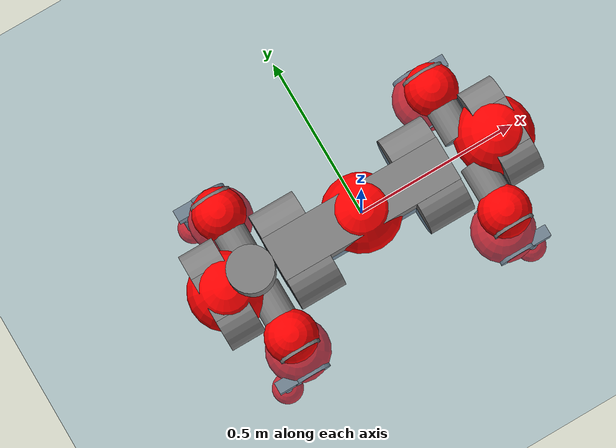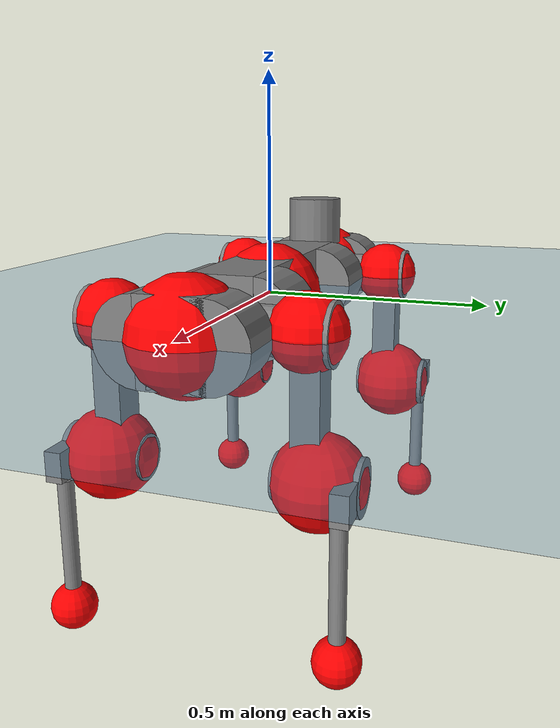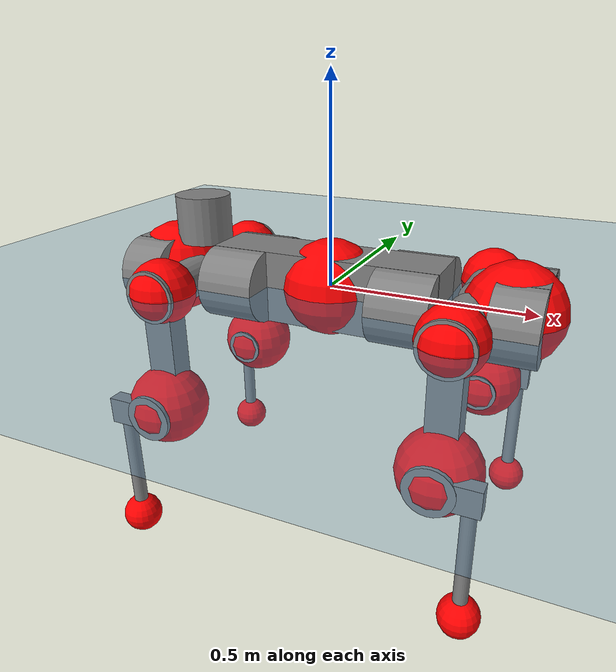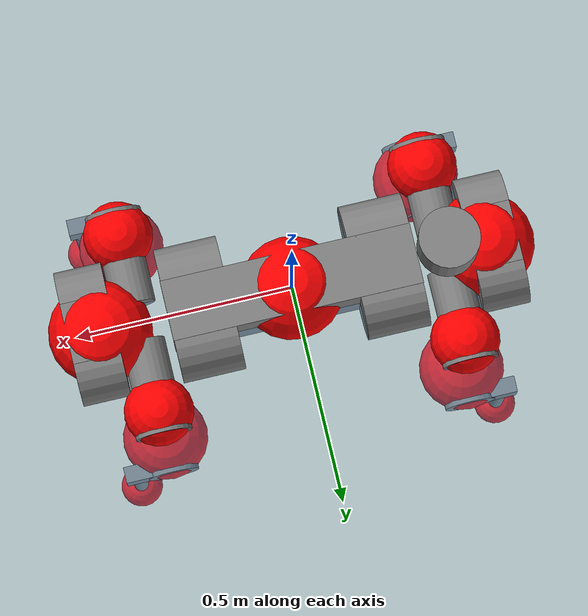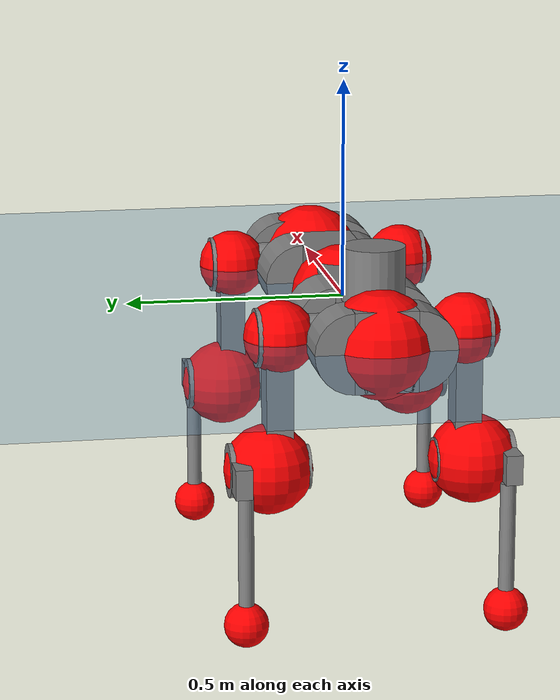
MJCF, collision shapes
<mujoco model="anymal_c">
  <compiler angle="radian" assetdir="assets" balanceinertia="true" inertiafromgeom="false"/>

  <option timestep="0.005" density="1.2" viscosity="2e-05"/>

  <size nkey="1"/>

  <visual>
    <quality shadowsize="8192"/>
    <map shadowclip="0.5"/>
  </visual>

  <default>
    <default class="/">
      <material specular="0" shininess="0.25"/>
      <geom contype="0" conaffinity="0" group="1" solref="-1000 -80"/>
      <site size="0.01 0.005 0.005" group="5"/>
      <general forcelimited="true" forcerange="-80 80" biastype="affine" gainprm="80" biasprm="0 -80 -2"/>
      <default class="anymal_c">
        <joint armature="0.01" damping="0.01" frictionloss="0.1"/>
        <default class="visual">
          <geom type="mesh" group="2"/>
          <default class="visual_zflip"/>
        </default>
        <default class="collision">
          <geom type="cylinder" group="3"/>
          <default class="foot">
            <geom size="0.03 0 0" type="sphere" condim="6" priority="1" friction="0.8 0.02 0.01" solimp="0.015 1 0.03"/>
          </default>
        </default>
      </default>
      <default class="reward_collision_sphere">
        <geom group="5" rgba="1 0 0 1"/>
      </default>
    </default>
  </default>

  <asset>
    <texture type="skybox" colorspace="auto" name="//unnamed_texture_0" builtin="gradient" rgb1="0.95 0.95 0.95" rgb2="0.95 0.95 0.95" width="100" height="600"/>
    <texture type="2d" colorspace="auto" name="texplane" builtin="checker" rgb1="0.345 0.575 0.748" rgb2="0.345 0.575 0.748" markrgb="1 1 1" width="512" height="512"/>
    <texture type="2d" colorspace="linear" name="base" file="base.png"/>
    <texture type="2d" colorspace="linear" name="top_shell" file="top_shell.png"/>
    <texture type="2d" colorspace="linear" name="bottom_shell" file="bottom_shell.png"/>
    <texture type="2d" colorspace="linear" name="remote" file="remote.png"/>
    <texture type="2d" colorspace="linear" name="hatch" file="hatch.png"/>
    <texture type="2d" colorspace="linear" name="handle" file="handle.png"/>
    <texture type="2d" colorspace="linear" name="face" file="face.png"/>
    <texture type="2d" colorspace="linear" name="battery" file="battery.png"/>
    <texture type="2d" colorspace="linear" name="lidar_cage" file="lidar_cage.png"/>
    <texture type="2d" colorspace="linear" name="depth_camera" file="depth_camera.png"/>
    <texture type="2d" colorspace="linear" name="wide_angle_camera" file="wide_angle_camera.png"/>
    <texture type="2d" colorspace="linear" name="lidar" file="lidar.png"/>
    <texture type="2d" colorspace="linear" name="drive" file="drive.png"/>
    <texture type="2d" colorspace="linear" name="hip_l" file="hip_l.png"/>
    <texture type="2d" colorspace="linear" name="shank_l" file="shank_l.png"/>
    <texture type="2d" colorspace="linear" name="foot" file="foot.png"/>
    <texture type="2d" colorspace="linear" name="thigh" file="thigh.png"/>
    <texture type="2d" colorspace="linear" name="shank_r" file="shank_r.png"/>
    <texture type="2d" colorspace="linear" name="hip_r" file="hip_r.png"/>
    <material name="MatPlane" class="/" texture="texplane" texuniform="true" texrepeat="2 2" specular="0.9" shininess="0.5"/>
    <material name="black_plastic" class="/" rgba="0.007 0.007 0.007 1"/>
    <material name="green" class="/" rgba="0.052 0.178 0.033 1"/>
    <material name="red" class="/" rgba="0.178 0.006 0.005 1"/>
    <material name="yellow" class="/" rgba="0.178 0.119 0.006 1"/>
    <material name="lwl" class="/" rgba="0.8 0.8 0.8 1"/>
    <material name="base" class="/" texture="base"/>
    <material name="top_shell" class="/" texture="top_shell"/>
    <material name="bottom_shell" class="/" texture="bottom_shell"/>
    <material name="hip_l" class="/" texture="hip_l"/>
    <material name="thigh" class="/" texture="thigh"/>
    <material name="shank_l" class="/" texture="shank_l"/>
    <material name="foot" class="/" texture="foot"/>
    <material name="hip_r" class="/" texture="hip_r"/>
    <material name="shank" class="/" texture="shank_r"/>
    <material name="hatch" class="/" texture="hatch"/>
    <material name="remote" class="/" texture="remote"/>
    <material name="handle" class="/" texture="handle"/>
    <material name="face" class="/" texture="face"/>
    <material name="depth_camera" class="/" texture="depth_camera"/>
    <material name="wide_angle_camera" class="/" texture="wide_angle_camera"/>
    <material name="battery" class="/" texture="battery"/>
    <material name="lidar_cage" class="/" texture="lidar_cage"/>
    <material name="lidar" class="/" texture="lidar"/>
    <material name="drive" class="/" texture="drive"/>
    <mesh name="base_0" class="/" file="base_0.obj"/>
    <mesh name="base_1" class="/" file="base_1.obj"/>
    <mesh name="base_2" class="/" file="base_2.obj"/>
    <mesh name="base_3" class="/" file="base_3.obj"/>
    <mesh name="base_4" class="/" file="base_4.obj"/>
    <mesh name="base_5" class="/" file="base_5.obj"/>
    <mesh name="top_shell" class="/" file="top_shell.obj"/>
    <mesh name="bottom_shell" class="/" file="bottom_shell.obj"/>
    <mesh name="remote" class="/" file="remote.obj"/>
    <mesh name="handle" class="/" file="handle.obj"/>
    <mesh name="face" class="/" file="face.obj"/>
    <mesh name="wide_angle_camera" class="/" file="wide_angle_camera.obj"/>
    <mesh name="depth_camera" class="/" file="depth_camera.obj"/>
    <mesh name="battery" class="/" file="battery.obj"/>
    <mesh name="lidar_cage" class="/" file="lidar_cage.obj"/>
    <mesh name="lidar" class="/" file="lidar.obj"/>
    <mesh name="drive" class="/" file="drive.obj"/>
    <mesh name="hip_l" class="/" file="hip_l.obj"/>
    <mesh name="thigh" class="/" file="thigh.obj"/>
    <mesh name="shank_l" class="/" file="shank_l.obj"/>
    <mesh name="foot" class="/" file="foot.obj"/>
    <mesh name="hip_r" class="/" file="hip_r.obj"/>
    <mesh name="hatch" class="/" file="hatch.obj"/>
    <mesh name="shank_r" class="/" file="shank_r.obj"/>
  </asset>

  <worldbody>
    <geom name="floor" class="/" size="100 100 0.125" type="plane" group="0" material="MatPlane"/>
    <light name="toplight_shadow" class="/" pos="0 0 5" dir="0.0990148 0.0990148 -0.990148" type="directional" ambient="0.04 0.04 0.04" diffuse="0.55 0.55 0.55" specular="0.12 0.12 0.12"/>
    <light name="toplight_fill" class="/" pos="0 0 5" dir="0.0990148 0.0990148 -0.990148" type="directional" castshadow="false" ambient="0.04 0.04 0.04" diffuse="0.3 0.3 0.3" specular="0.08 0.08 0.08"/>
    <body name="trunk" childclass="anymal_c" pos="0.000469628 0.000207984 -0.00135928" quat="1 0.000341807 -0.000335555 9.45881e-05">
      <inertial pos="0.00217917 -7.55938e-06 0.0529331" quat="0.5026 0.500957 0.499418 0.497008" mass="19.0905" diaginertia="0.60399 0.48978 0.267431"/>
      <joint name="//unnamed_joint_0" type="free" armature="0" damping="0" frictionloss="0"/>
      <geom name="//unnamed_geom_1" class="visual" material="green" mesh="base_0"/>
      <geom name="//unnamed_geom_2" class="visual" material="yellow" mesh="base_1"/>
      <geom name="//unnamed_geom_3" class="visual" material="red" mesh="base_2"/>
      <geom name="//unnamed_geom_4" class="visual" material="black_plastic" mesh="base_3"/>
      <geom name="//unnamed_geom_5" class="visual" material="lwl" mesh="base_4"/>
      <geom name="//unnamed_geom_6" class="visual" material="base" mesh="base_5"/>
      <geom name="trunk_1" class="collision" size="0.287674 0.0694386 0.0892782" type="box"/>
      <geom name="trunk_2" class="collision" size="0.0892782 0.0719185" pos="0.214499 0.0665183 0" quat="0.707107 0 0.707107 0"/>
      <geom name="trunk_3" class="collision" size="0.0892782 0.0719185" pos="-0.214499 0.0665183 0" quat="0.707107 0 0.707107 0"/>
      <geom name="trunk_4" class="collision" size="0.0892782 0.0719185" pos="0.214499 -0.0665183 0" quat="0.707107 0 0.707107 0"/>
      <geom name="trunk_5" class="collision" size="0.0892782 0.0719185" pos="-0.214499 -0.0665183 0" quat="0.707107 0 0.707107 0"/>
      <geom name="//unnamed_geom_12" class="visual" material="top_shell" mesh="top_shell"/>
      <geom name="//unnamed_geom_13" class="visual" material="bottom_shell" mesh="bottom_shell"/>
      <geom name="//unnamed_geom_14" class="visual" material="remote" mesh="remote"/>
      <geom name="//unnamed_geom_15" class="visual" material="handle" mesh="handle"/>
      <geom name="//unnamed_geom_16" class="visual" pos="0.40878 0 0" quat="1 0 0 0" material="face" mesh="face"/>
      <geom name="trunk_6" class="collision" size="0.0545589 0.0694386 0.0892782" pos="0.463021 0 0" type="box"/>
      <geom name="//unnamed_geom_18" class="collision" size="0.0892782 0.0545589" pos="0.463021 0.0665183 0" quat="0.707107 0 0.707107 0"/>
      <geom name="//unnamed_geom_19" class="collision" size="0.0892782 0.0545589" pos="0.463021 -0.0665183 0" quat="0.707107 0 0.707107 0"/>
      <geom name="//unnamed_geom_20" class="visual" pos="0.455281 0 -0.0307577" quat="0.965926 0 0.258819 0" material="depth_camera" mesh="depth_camera"/>
      <geom name="//unnamed_geom_21" class="visual" pos="0.505921 0 0.015561" material="wide_angle_camera" mesh="wide_angle_camera"/>
      <geom name="//unnamed_geom_22" class="visual_zflip" pos="-0.40878 0 0" quat="0 0 0 1" material="face" mesh="face"/>
      <geom name="trunk_7" class="collision" size="0.0545589 0.0694386 0.0892782" pos="-0.463021 0 0" quat="0 0 0 1" type="box"/>
      <geom name="//unnamed_geom_24" class="collision" size="0.0892782 0.0545589" pos="-0.463021 -0.0665183 0" quat="0 -0.707107 0 0.707107"/>
      <geom name="//unnamed_geom_25" class="collision" size="0.0892782 0.0545589" pos="-0.463021 0.0665183 0" quat="0 -0.707107 0 0.707107"/>
      <geom name="//unnamed_geom_26" class="visual" pos="-0.455281 0 -0.0307577" quat="0 -0.258819 0 0.965926" material="depth_camera" mesh="depth_camera"/>
      <geom name="//unnamed_geom_27" class="visual_zflip" pos="-0.505921 0 0.015561" quat="0 0 0 1" material="wide_angle_camera" mesh="wide_angle_camera"/>
      <geom name="//unnamed_geom_28" class="visual" material="battery" mesh="battery"/>
      <geom name="//unnamed_geom_29" class="visual" pos="0 0.0721876 0.0297919" quat="0.683013 -0.183013 0.183013 0.683013" material="depth_camera" mesh="depth_camera"/>
      <geom name="//unnamed_geom_30" class="visual" pos="0 -0.0721876 0.0297919" quat="0.683013 0.183013 0.183013 -0.683013" material="depth_camera" mesh="depth_camera"/>
      <geom name="//unnamed_geom_31" class="visual" pos="-0.358977 0 0.0764017" quat="1 0 0 0" material="lidar_cage" mesh="lidar_cage"/>
      <geom name="trunk_8" class="collision" size="0.0694386 0.0595188" pos="-0.358977 0 0.13877"/>
      <geom name="//unnamed_geom_33" class="visual" pos="-0.358977 -1.41196e-05 0.147814" quat="0.707107 0 0 -0.707107" material="lidar" mesh="lidar"/>
      <geom name="//unnamed_geom_34" class="visual" pos="0.295761 0.0988588 -1.53902e-09" quat="0.258819 0.965926 0 0" material="drive" mesh="drive"/>
      <geom name="//unnamed_geom_35" class="visual" pos="0.295761 -0.0988588 1.53902e-09" quat="0.258819 -0.965926 0 0" material="drive" mesh="drive"/>
      <geom name="//unnamed_geom_36" class="visual" pos="-0.295761 0.0988588 1.53902e-09" quat="0 0 0.965926 -0.258819" material="drive" mesh="drive"/>
      <geom name="//unnamed_geom_37" class="visual" pos="-0.295761 -0.0988588 -1.53902e-09" quat="0 0 -0.965926 -0.258819" material="drive" mesh="drive"/>
      <geom name="//unnamed_geom_38" class="visual" pos="0.114399 0 0.075882" quat="1 0 0 0" material="hatch" mesh="hatch"/>
      <geom name="//unnamed_geom_39" class="reward_collision_sphere" size="0.119038"/>
      <geom name="//unnamed_geom_40" class="reward_collision_sphere" size="0.119038" pos="0.44379 0 0"/>
      <geom name="//unnamed_geom_41" class="reward_collision_sphere" size="0.119038" pos="-0.44379 0 0"/>
      <site name="imu" pos="0.247469 0.00364582 0.0482988" size="0.0099198"/>
      <camera name="track" pos="0 -1.90052 0" quat="0.707107 0.707107 0 0" mode="trackcom"/>
      <camera name="ego_camera" pos="0.44379 0 -0.0415792" quat="-0.5 -0.5 0.5 0.5"/>
      <body name="LF_HIP" pos="0.296308 0.0983457 3.8124e-05" quat="0.258817 0.965926 -4.9208e-06 -6.95673e-05">
        <inertial pos="0.0551745 -0.0141089 -0.00980232" quat="-0.123523 0.712894 -0.13695 0.676586" mass="2.74233" diaginertia="0.00550477 0.00386372 0.00403939"/>
        <joint name="LF_HAA" pos="0 0 0" axis="1 -0.000754641 0.000130525" range="-0.720617 0.470594" armature="0.00993328" damping="0.0117336" frictionloss="0.0944965"/>
        <geom name="//unnamed_geom_42" class="visual" pos="0 -9.05337e-05 1.48701e-05" quat="0.258819 -0.965926 0 0" material="hip_l" mesh="hip_l"/>
        <geom name="//unnamed_geom_43" class="visual" pos="0.0590734 -0.0711385 -0.0417317" quat="0.183013 -0.683013 0.683013 0.183013" material="drive" mesh="drive"/>
        <geom name="//unnamed_geom_44" class="collision" size="0.049599 0.0694386" pos="0.0590734 -0.0113649 -0.0071776" quat="-0.353553 -0.612372 0.612372 -0.353553"/>
        <body name="LF_THIGH" pos="0.0594347 -0.0702019 -0.0433588" quat="0.182868 -0.683036 0.683031 0.183003">
          <inertial pos="0.0305608 0.000164999 -0.255058" quat="0.993368 -0.0046664 -0.0802007 0.0822541" mass="2.98423" diaginertia="0.0281541 0.0230143 0.00503726"/>
          <joint name="LF_HFE" pos="0 0 0" axis="1 6.30243e-05 0.000154765" stiffness="0.00282197" range="-3.1254 3.13713" armature="0.0100673" damping="0.00630165" frictionloss="0.0989893"/>
          <geom name="//unnamed_geom_45" class="visual" pos="0.000715049 1.12675e-06 0" quat="0.707107 0 0 -0.707107" material="thigh" mesh="thigh"/>
          <geom name="//unnamed_geom_46" class="collision" size="0.0644787 0.0396792" pos="0.039448 0 0" quat="0.5 0.5 -0.5 -0.5"/>
          <geom name="//unnamed_geom_47" class="collision" size="0.0371992 0.0297594 0.140181" pos="0.029586 0 -0.146893" quat="0.707107 0 0 -0.707107" type="box"/>
          <geom name="//unnamed_geom_48" class="visual" pos="0.0989159 0 -0.296251" quat="1 0 0 0" material="drive" mesh="drive"/>
          <geom name="//unnamed_geom_49" class="collision" size="0.049599 0.0694386" pos="0.0298819 0 -0.296251" quat="0.707107 0 0.707107 0"/>
          <geom name="//unnamed_geom_50" class="reward_collision_sphere" size="0.0793584" pos="0.024655 0 0"/>
          <body name="LF_SHANK" pos="0.0989105 -0.000809013 -0.296369" quat="1 3.19922e-05 -1.41794e-05 5.93422e-05">
            <inertial pos="0.0036296 -0.0592732 -0.0840054" quat="0.993052 -0.114815 -0.000338673 -0.0258091" mass="0.577968" diaginertia="0.0094157 0.00721188 0.0013601"/>
            <joint name="LF_KFE" pos="0 0 0" axis="0.999999 0.00163886 -0.000521844" range="-3.1735 3.12185" armature="0.00980528" damping="0.00797513" frictionloss="0.106581"/>
            <geom name="//unnamed_geom_51" class="visual" pos="0.000233162 0.00124323 0" quat="0.707107 0 0 -0.707107" material="shank_l" mesh="shank_l"/>
            <geom name="LF_kfe_act" class="collision" size="0.0595188 0.0198396" pos="0.019724 0 0" quat="0.5 0.5 -0.5 -0.5"/>
            <geom name="//unnamed_geom_53" class="collision" size="0.0570379 0.0334793 0.0188476" pos="0.019724 -0.054639 0" quat="0.5 0.5 -0.5 -0.5" type="box"/>
            <geom name="//unnamed_geom_54" class="visual" pos="0.0128699 -0.0831748 -0.351313" quat="0.382683 0 0 -0.92388" material="foot" mesh="foot"/>
            <geom name="LF_calf" class="collision" size="0.0173596 0.140119" pos="0.0128699 -0.0835754 -0.175656" quat="0.707107 0 0 -0.707107"/>
            <geom name="LF_foot" class="foot" size="0.0295622" pos="0.0128699 -0.0835754 -0.327924" quat="0.707107 0 0 -0.707107"/>
            <geom name="//unnamed_geom_57" class="reward_collision_sphere" size="0.099198" pos="-0.04931 0 0"/>
            <geom name="//unnamed_geom_58" class="reward_collision_sphere" size="0.049599" pos="0.0128699 -0.0835754 -0.327924"/>
            <site name="LF_foot" class="foot" pos="0.0128699 -0.0835754 -0.327924" quat="0.707107 0 0 -0.707107" size="0.0099198"/>
          </body>
        </body>
      </body>
      <body name="RF_HIP" pos="0.297144 -0.0996139 -7.54827e-05" quat="0.259114 -0.965846 -0.000471317 -0.000438562">
        <inertial pos="0.056781 0.0149245 -0.00900347" quat="0.1401 0.68173 0.130316 0.70614" mass="2.77558" diaginertia="0.00552368 0.00383966 0.00403742"/>
        <joint name="RF_HAA" pos="0 0 0" axis="0.999983 0.00295895 0.00504822" range="-0.519732 0.739866" armature="0.00993157" damping="0.0147556" frictionloss="0.0958714"/>
        <geom name="//unnamed_geom_59" class="visual" pos="0 9.0533e-05 1.487e-05" quat="0.258819 0.965926 0 0" material="hip_r" mesh="hip_r"/>
        <geom name="//unnamed_geom_60" class="visual" pos="0.0590734 0.0711385 -0.0417317" quat="0.183013 0.683013 0.683013 -0.183013" material="drive" mesh="drive"/>
        <geom name="//unnamed_geom_61" class="collision" size="0.049599 0.0694386" pos="0.0590734 0.0113649 -0.0071776" quat="-0.353553 0.612372 0.612372 0.353553"/>
        <body name="RF_THIGH" pos="0.0591264 0.0696114 -0.0432951" quat="0.183408 0.682771 0.683123 -0.183107">
          <inertial pos="0.0314113 0.000104678 -0.255056" quat="0.992817 -0.00560665 -0.0799494 0.0888263" mass="2.99337" diaginertia="0.0281094 0.023125 0.00502071"/>
          <joint name="RF_HFE" pos="0 0 0" axis="1 0.000197879 -0.000484968" stiffness="0.00374002" range="-3.14053 3.15688" armature="0.0104011" damping="0" frictionloss="0.0991171"/>
          <geom name="//unnamed_geom_62" class="visual" pos="0.000715049 1.12675e-06 0" quat="0.707107 0 0 -0.707107" material="thigh" mesh="thigh"/>
          <geom name="//unnamed_geom_63" class="collision" size="0.0644787 0.0396792" pos="0.039448 0 0" quat="0.5 0.5 0.5 0.5"/>
          <geom name="//unnamed_geom_64" class="collision" size="0.0371992 0.0297594 0.140181" pos="0.029586 0 -0.146893" quat="0.707107 0 0 0.707107" type="box"/>
          <geom name="//unnamed_geom_65" class="visual" pos="0.0989159 0 -0.296251" quat="1 0 0 0" material="drive" mesh="drive"/>
          <geom name="//unnamed_geom_66" class="collision" size="0.049599 0.0694386" pos="0.0298819 0 -0.296251" quat="0.707107 0 0.707107 0"/>
          <geom name="//unnamed_geom_67" class="reward_collision_sphere" size="0.0793584" pos="0.024655 0 0"/>
          <body name="RF_SHANK" pos="0.0974086 0.000353246 -0.296113" quat="1 -0.000145973 -1.16765e-05 -6.93332e-05">
            <inertial pos="0.00540933 0.0574284 -0.0836075" quat="0.992237 0.121252 0.00452766 0.0272739" mass="0.564316" diaginertia="0.00939104 0.00712933 0.00135528"/>
            <joint name="RF_KFE" pos="0 0 0" axis="0.99999 0.00280954 -0.00337828" stiffness="0.000948736" range="-3.13816 3.12763" armature="0.00980871" damping="0.00688124" frictionloss="0.103967"/>
            <geom name="//unnamed_geom_68" class="visual" pos="0.000233161 -0.00124323 0" quat="0.707107 0 0 0.707107" material="shank" mesh="shank_r"/>
            <geom name="RF_kfe_act" class="collision" size="0.0595188 0.0198396" pos="0.019724 0 0" quat="0.5 0.5 0.5 0.5"/>
            <geom name="//unnamed_geom_70" class="collision" size="0.0570379 0.0334793 0.0188476" pos="0.019724 0.054639 0" quat="0.5 0.5 0.5 0.5" type="box"/>
            <geom name="//unnamed_geom_71" class="visual" pos="0.01287 0.0831748 -0.351313" quat="0.382683 0 0 0.92388" material="foot" mesh="foot"/>
            <geom name="RF_calf" class="collision" size="0.0173596 0.140119" pos="0.0128699 0.0835754 -0.175656" quat="0.707107 0 0 0.707107"/>
            <geom name="RF_foot" class="foot" size="0.0292314" pos="0.0128699 0.0835754 -0.327924" quat="0.707107 0 0 0.707107"/>
            <geom name="//unnamed_geom_74" class="reward_collision_sphere" size="0.099198" pos="-0.04931 0 0"/>
            <geom name="//unnamed_geom_75" class="reward_collision_sphere" size="0.049599" pos="0.0128699 0.0835754 -0.327924"/>
            <site name="RF_foot" class="foot" pos="0.0128699 0.0835754 -0.327924" quat="0.707107 0 0 0.707107" size="0.0099198"/>
          </body>
        </body>
      </body>
      <body name="LH_HIP" pos="-0.295544 0.0993184 0.000553897" quat="0.00024887 -0.000100043 0.965924 -0.258827">
        <inertial pos="0.0563195 0.0134469 -0.0101251" quat="0.132716 0.67988 0.12508 0.710285" mass="2.73089" diaginertia="0.00559094 0.00381426 0.00404133"/>
        <joint name="LH_HAA" pos="0 0 0" axis="0.999988 0.00374249 -0.00300356" range="-0.506475 0.741652" armature="0.0101064" damping="0.00809437" frictionloss="0.0996602"/>
        <geom name="//unnamed_geom_76" class="visual" pos="0 9.0533e-05 1.487e-05" quat="-0.258819 -0.965926 0 0" material="hip_r" mesh="hip_r"/>
        <geom name="//unnamed_geom_77" class="visual" pos="0.0590734 0.0711385 -0.0417317" quat="0.183013 0.683013 0.683013 -0.183013" material="drive" mesh="drive"/>
        <geom name="//unnamed_geom_78" class="collision" size="0.049599 0.0694386" pos="0.0590734 0.0113649 -0.0071776" quat="-0.353553 0.612372 0.612372 0.353553"/>
        <body name="LH_THIGH" pos="0.0587742 0.0684559 -0.0420743" quat="0.183037 0.683003 0.683 -0.183074">
          <inertial pos="0.0320753 0.000155172 -0.256709" quat="0.992748 -0.00511458 -0.0808637 0.0888019" mass="3.07197" diaginertia="0.0291881 0.0238177 0.00515561"/>
          <joint name="LH_HFE" pos="0 0 0" axis="0.999973 0.0048308 -0.00547507" range="-3.12945 3.13452" armature="0.00982045" damping="0" frictionloss="0.0945972"/>
          <geom name="//unnamed_geom_79" class="visual" pos="0.000715049 1.12675e-06 0" quat="0.707107 0 0 -0.707107" material="thigh" mesh="thigh"/>
          <geom name="//unnamed_geom_80" class="collision" size="0.0644787 0.0396792" pos="0.039448 0 0" quat="0.5 0.5 -0.5 -0.5"/>
          <geom name="//unnamed_geom_81" class="collision" size="0.0371992 0.0297594 0.140181" pos="0.029586 0 -0.146893" quat="0.707107 0 0 -0.707107" type="box"/>
          <geom name="//unnamed_geom_82" class="visual" pos="0.0989159 0 -0.296251" quat="1 0 0 0" material="drive" mesh="drive"/>
          <geom name="//unnamed_geom_83" class="collision" size="0.049599 0.0694386" pos="0.0298819 0 -0.296251" quat="0.707107 0 0.707107 0"/>
          <geom name="//unnamed_geom_84" class="reward_collision_sphere" size="0.0793584" pos="0.024655 0 0"/>
          <body name="LH_SHANK" pos="0.0993999 -0.000427434 -0.297227" quat="1 0.000101085 8.87874e-05 -0.000116259">
            <inertial pos="0.00412882 0.0575042 -0.0853633" quat="0.993242 0.113865 -0.00242455 0.0223572" mass="0.575383" diaginertia="0.00951011 0.00727925 0.00134982"/>
            <joint name="LH_KFE" pos="0 0 0" axis="0.999999 0.00113433 0.000987259" range="-3.13425 3.10632" armature="0.0102966" damping="0" frictionloss="0.0994559"/>
            <geom name="//unnamed_geom_85" class="visual" pos="0.000233161 -0.00124323 0" quat="-0.707107 0 0 -0.707107" material="shank" mesh="shank_r"/>
            <geom name="LH_kfe_act" class="collision" size="0.0595188 0.0198396" pos="0.019724 0 0" quat="0.5 0.5 -0.5 -0.5"/>
            <geom name="//unnamed_geom_87" class="collision" size="0.0570379 0.0334793 0.0188476" pos="0.019724 0.054639 0" quat="0.5 0.5 -0.5 -0.5" type="box"/>
            <geom name="//unnamed_geom_88" class="visual" pos="0.01287 0.0831748 -0.351313" quat="-0.382683 0 0 -0.92388" material="foot" mesh="foot"/>
            <geom name="LH_calf" class="collision" size="0.0173596 0.140119" pos="0.0128699 0.0835754 -0.175656" quat="0.707107 0 0 -0.707107"/>
            <geom name="LH_foot" class="foot" size="0.0300175" pos="0.0128699 0.0835754 -0.327924" quat="0.707107 0 0 -0.707107"/>
            <geom name="//unnamed_geom_91" class="reward_collision_sphere" size="0.099198" pos="-0.04931 0 0"/>
            <geom name="//unnamed_geom_92" class="reward_collision_sphere" size="0.049599" pos="0.0128699 0.0835754 -0.327924"/>
            <site name="LH_foot" class="foot" pos="0.0128699 0.0835754 -0.327924" quat="0.707107 0 0 -0.707107" size="0.0099198"/>
          </body>
        </body>
      </body>
      <body name="RH_HIP" pos="-0.294047 -0.0986751 0.000601506" quat="-7.55831e-06 -2.8832e-05 -0.965921 -0.258836">
        <inertial pos="0.055767 -0.0138329 -0.00884202" quat="-0.130857 0.708508 -0.132578 0.680673" mass="2.70007" diaginertia="0.00563274 0.00386502 0.00401357"/>
        <joint name="RH_HAA" pos="0 0 0" axis="0.999951 -0.000419623 -0.00989366" range="-0.703162 0.492351" armature="0.00991906" damping="0.0100967" frictionloss="0.107371"/>
        <geom name="//unnamed_geom_93" class="visual" pos="0 -9.05337e-05 1.48701e-05" quat="-0.258819 0.965926 0 0" material="hip_l" mesh="hip_l"/>
        <geom name="//unnamed_geom_94" class="visual" pos="0.0590734 -0.0711385 -0.0417317" quat="-0.183013 0.683013 -0.683013 -0.183013" material="drive" mesh="drive"/>
        <geom name="//unnamed_geom_95" class="collision" size="0.049599 0.0694386" pos="0.0590734 -0.0113649 -0.0071776" quat="0.353553 0.612372 -0.612372 0.353553"/>
        <body name="RH_THIGH" pos="0.0586454 -0.0690983 -0.0431605" quat="-0.183043 0.682809 -0.683211 -0.183001">
          <inertial pos="0.029659 0.000935974 -0.255803" quat="0.993511 -0.00461919 -0.0790202 0.0816702" mass="2.95244" diaginertia="0.0285116 0.0232329 0.00511203"/>
          <joint name="RH_HFE" pos="0 0 0" axis="0.999991 0.00127653 -0.00397656" range="-3.14253 3.14627" armature="0.010063" damping="0.0139436" frictionloss="0.0995221"/>
          <geom name="//unnamed_geom_96" class="visual" pos="0.000715049 1.12675e-06 0" quat="0.707107 0 0 -0.707107" material="thigh" mesh="thigh"/>
          <geom name="//unnamed_geom_97" class="collision" size="0.0644787 0.0396792" pos="0.039448 0 0" quat="0.5 0.5 0.5 0.5"/>
          <geom name="//unnamed_geom_98" class="collision" size="0.0371992 0.0297594 0.140181" pos="0.029586 0 -0.146893" quat="0.707107 0 0 0.707107" type="box"/>
          <geom name="//unnamed_geom_99" class="visual" pos="0.0989159 0 -0.296251" quat="1 0 0 0" material="drive" mesh="drive"/>
          <geom name="//unnamed_geom_100" class="collision" size="0.049599 0.0694386" pos="0.0298819 0 -0.296251" quat="0.707107 0 0.707107 0"/>
          <geom name="//unnamed_geom_101" class="reward_collision_sphere" size="0.0793584" pos="0.024655 0 0"/>
          <body name="RH_SHANK" pos="0.0973308 0.000116217 -0.29637" quat="1 -7.27366e-05 0.000669503 -0.000449717">
            <inertial pos="0.00492402 -0.0582835 -0.0840453" quat="0.993264 -0.113612 -0.00322658 -0.0225405" mass="0.565753" diaginertia="0.00932646 0.00700275 0.00132793"/>
            <joint name="RH_KFE" pos="0 0 0" axis="0.999933 -0.00160684 -0.0115037" range="-3.11149 3.13424" armature="0.0100157" damping="0.00136948" frictionloss="0.0998656"/>
            <geom name="//unnamed_geom_102" class="visual" pos="0.000233162 0.00124323 0" quat="0.707107 0 0 -0.707107" material="shank_l" mesh="shank_l"/>
            <geom name="RH_kfe_act" class="collision" size="0.0595188 0.0198396" pos="0.019724 0 0" quat="0.5 0.5 0.5 0.5"/>
            <geom name="//unnamed_geom_104" class="collision" size="0.0570379 0.0334793 0.0188476" pos="0.019724 -0.054639 0" quat="0.5 0.5 0.5 0.5" type="box"/>
            <geom name="//unnamed_geom_105" class="visual" pos="0.0128699 -0.0831748 -0.351313" quat="0.382683 0 0 -0.92388" material="foot" mesh="foot"/>
            <geom name="RH_calf" class="collision" size="0.0173596 0.140119" pos="0.0128699 -0.0835754 -0.175656" quat="0.707107 0 0 0.707107"/>
            <geom name="RH_foot" class="foot" size="0.0298491" pos="0.0128699 -0.0835754 -0.327924" quat="0.707107 0 0 0.707107"/>
            <geom name="//unnamed_geom_108" class="reward_collision_sphere" size="0.099198" pos="-0.04931 0 0"/>
            <geom name="//unnamed_geom_109" class="reward_collision_sphere" size="0.049599" pos="0.0128699 -0.0835754 -0.327924"/>
            <site name="RH_foot" class="foot" pos="0.0128699 -0.0835754 -0.327924" quat="0.707107 0 0 0.707107" size="0.0099198"/>
          </body>
        </body>
      </body>
    </body>
  </worldbody>

  <contact>
    <pair class="/" geom1="floor" geom2="LF_foot" name="//unnamed_contact_0"/>
    <pair class="/" geom1="floor" geom2="RF_foot" name="//unnamed_contact_1"/>
    <pair class="/" geom1="floor" geom2="LH_foot" name="//unnamed_contact_2"/>
    <pair class="/" geom1="floor" geom2="RH_foot" name="//unnamed_contact_3"/>
  </contact>

  <actuator>
    <general name="LF_HAA" class="/" joint="LF_HAA" forcerange="-79.4433 79.4433" gainprm="80.8326" biasprm="0 -80.8326 -1.9762"/>
    <general name="LF_HFE" class="/" joint="LF_HFE" forcerange="-80.3621 80.3621" gainprm="80.8326" biasprm="0 -80.8326 -1.9762"/>
    <general name="LF_KFE" class="/" joint="LF_KFE" forcerange="-77.1764 77.1764" gainprm="80.8326" biasprm="0 -80.8326 -1.9762"/>
    <general name="RF_HAA" class="/" joint="RF_HAA" forcerange="-78.33 78.33" gainprm="80.8326" biasprm="0 -80.8326 -1.9762"/>
    <general name="RF_HFE" class="/" joint="RF_HFE" forcerange="-77.813 77.813" gainprm="80.8326" biasprm="0 -80.8326 -1.9762"/>
    <general name="RF_KFE" class="/" joint="RF_KFE" forcerange="-79.0803 79.0803" gainprm="80.8326" biasprm="0 -80.8326 -1.9762"/>
    <general name="LH_HAA" class="/" joint="LH_HAA" forcerange="-79.661 79.661" gainprm="80.8326" biasprm="0 -80.8326 -1.9762"/>
    <general name="LH_HFE" class="/" joint="LH_HFE" forcerange="-76.1447 76.1447" gainprm="80.8326" biasprm="0 -80.8326 -1.9762"/>
    <general name="LH_KFE" class="/" joint="LH_KFE" forcerange="-82.8409 82.8409" gainprm="80.8326" biasprm="0 -80.8326 -1.9762"/>
    <general name="RH_HAA" class="/" joint="RH_HAA" forcerange="-79.7301 79.7301" gainprm="80.8326" biasprm="0 -80.8326 -1.9762"/>
    <general name="RH_HFE" class="/" joint="RH_HFE" forcerange="-81.1954 81.1954" gainprm="80.8326" biasprm="0 -80.8326 -1.9762"/>
    <general name="RH_KFE" class="/" joint="RH_KFE" forcerange="-77.0457 77.0457" gainprm="80.8326" biasprm="0 -80.8326 -1.9762"/>
  </actuator>

  <sensor>
    <gyro site="imu" name="imu_angular_velocity"/>
    <velocimeter site="imu" name="imu_linear_velocity"/>
    <framelinvel objtype="site" objname="LF_foot" name="LF_foot_global_linear_velocity"/>
    <framelinvel objtype="site" objname="RF_foot" name="RF_foot_global_linear_velocity"/>
    <framelinvel objtype="site" objname="LH_foot" name="LH_foot_global_linear_velocity"/>
    <framelinvel objtype="site" objname="RH_foot" name="RH_foot_global_linear_velocity"/>
  </sensor>

  <keyframe>
    <key name="home" qpos="0 0 0.55 1 0 0 0 0 0.4 -0.8 0 -0.4 0.8 0 -0.4 0.8 0 0.4 -0.8"/>
  </keyframe>
</mujoco>
